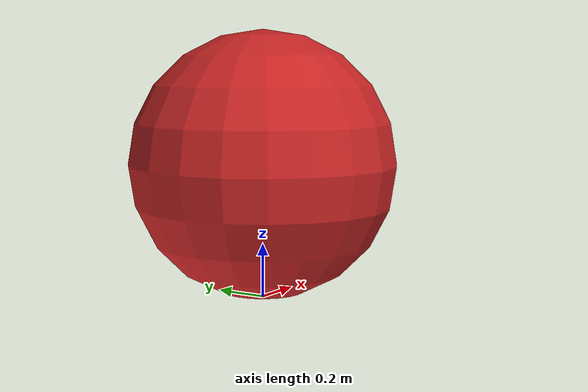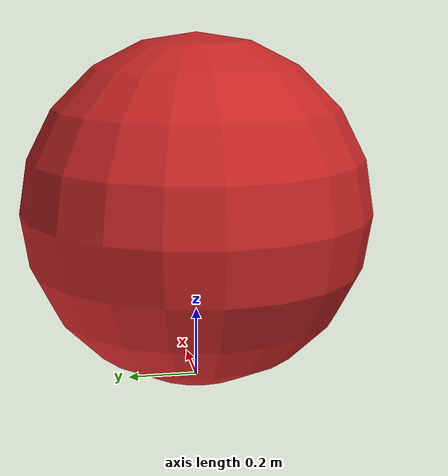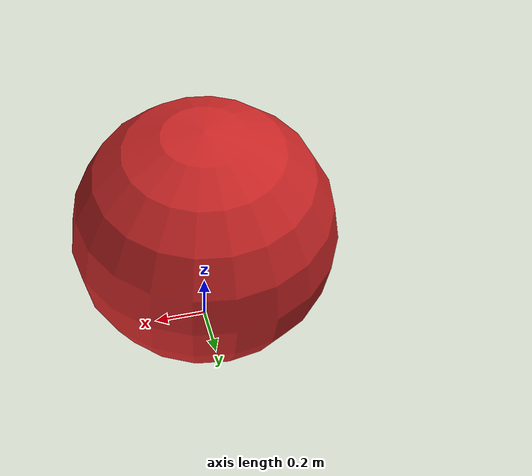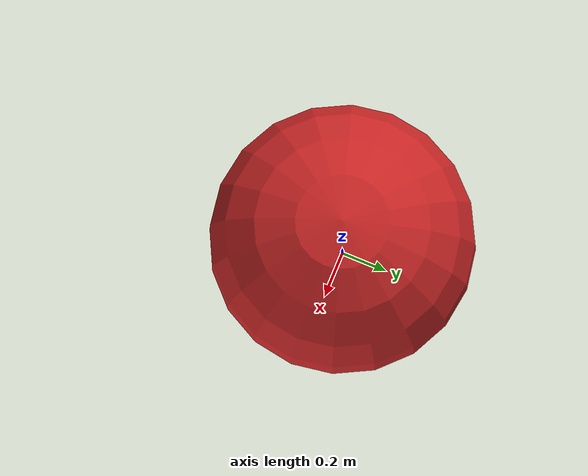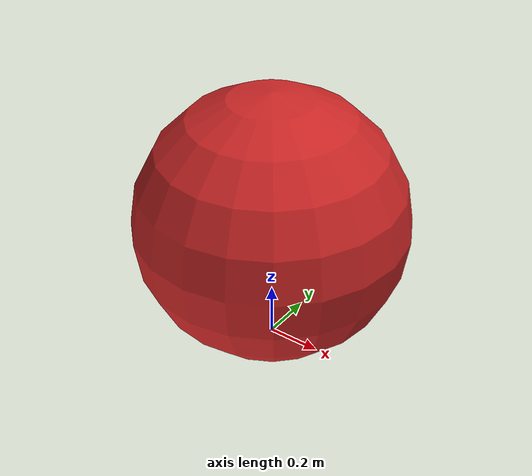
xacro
<?xml version="1.0"?>

<robot name="person"
       xmlns:xacro="http://ros.org/wiki/xacro">

  <!-- Included URDF Files -->
  <include filename="$(find bwi_gazebo_entities)/urdf/common.urdf.xacro" />
  <include filename="$(find bwi_gazebo_entities)/urdf/ball.urdf.xacro" />

  <xacro:ball />

</robot>

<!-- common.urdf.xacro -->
<root xmlns:xacro="http://ros.org/wiki/xacro">

  <!-- generic constants -->
  <xacro:property name="M_PI" value="3.14159265359" />

  <!-- colors -->
  <material name="light_grey">
    <color rgba="0.7 0.7 0.7 1" />
  </material>
  <material name="dark_grey">
    <color rgba="0.4 0.4 0.4 1" />
  </material>

</root>

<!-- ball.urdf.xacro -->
<root xmlns:xacro="http://ros.org/wiki/xacro">

  <include filename="$(find bwi_gazebo_entities)/urdf/person.gazebo.xacro" />

  <xacro:macro name="ball">

    <!-- root link, on the ground just below the ball origin -->
    <link name="base_footprint">
     <visual>
        <origin xyz="0 0 0" rpy="0 0 0" />
        <geometry>
          <box size="0.001 0.001 0.001" />
        </geometry>
      </visual>
    </link>

    <joint name="base_link_joint" type="fixed">
      <origin xyz="0.0 0 0.5" rpy="0 0 0" />
      <parent link="base_footprint"/>
      <child link="base_link" />
    </joint>

    <!-- the ball -->
    <link name="base_link">
      <inertial>
        <mass value="0.01" />
        <origin xyz="0 0 0" />
        <inertia ixx="1.0" ixy="0.0" ixz="0.0"
          iyy="1.0" iyz="0.0"
          izz="1.0" />
      </inertial>
      <visual>
        <geometry>
          <sphere radius="0.5" />
        </geometry>
        <material name="red" />
      </visual>
      <collision>
        <geometry>
          <sphere radius="0.5" />
        </geometry>
      </collision>
    </link>

    <gazebo reference="base_link">
      <material>Gazebo/Red</material>
    </gazebo>

    <gazebo>
      <xacro:gazebo_person_drive />
    </gazebo>

  </xacro:macro>

</root>
